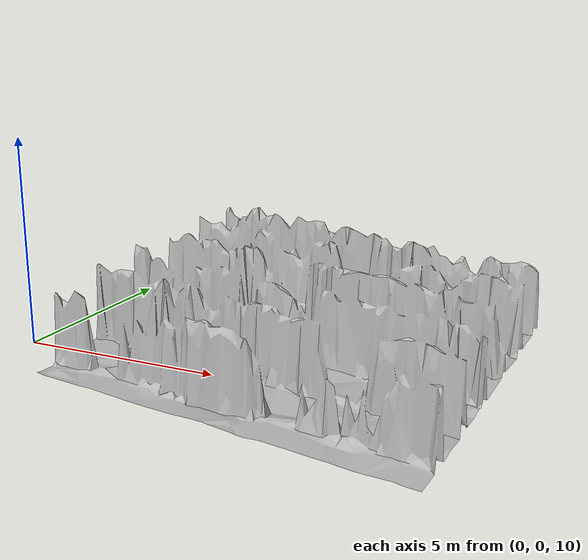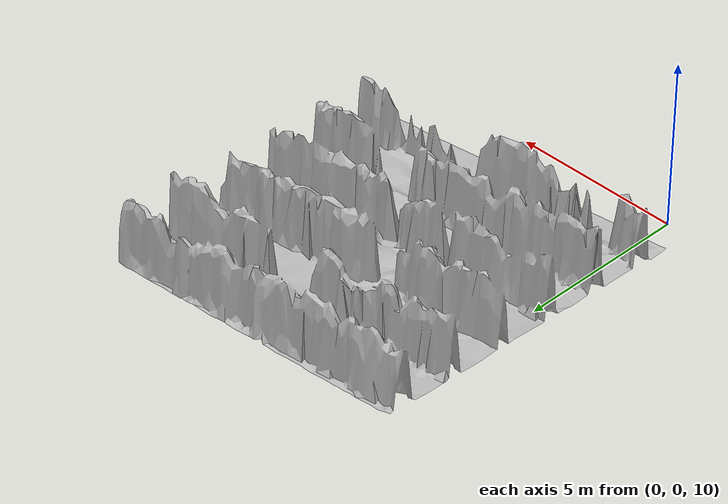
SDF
<?xml version="1.0" ?>
<sdf version="1.10">
    <model name="map_180_60">
        <link name="map_180_60_link">
            <visual name="map_180_60_visual">
                <geometry>
                    <mesh>
                        <uri>meshes/visual/map_180_60.obj</uri>
                    </mesh>
                </geometry>
            </visual>
            <collision name="map_180_60_collision">
                <surface>
                    <friction>
                        <ode>
                            <mu>2.316343837943928</mu>
                            <mu2>2.316343837943928</mu2>
                        </ode>
                        <bullet>
                            <friction>2.316343837943928</friction>
                            <friction2>2.316343837943928</friction2>
                        </bullet>
                    </friction>
                </surface>
                <geometry>
                    <mesh>
                        <uri>meshes/visual/map_180_60.obj</uri>
                    </mesh>
                </geometry>
            </collision>
        </link>
        <static>True</static>
    </model>
</sdf>
